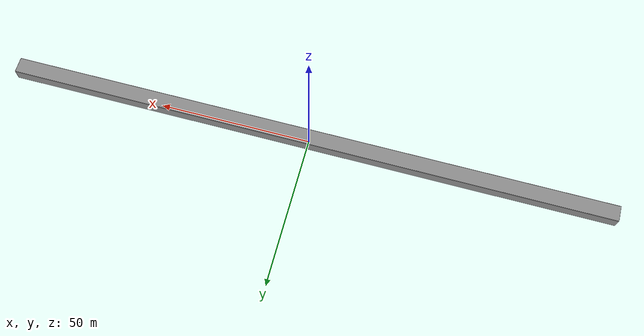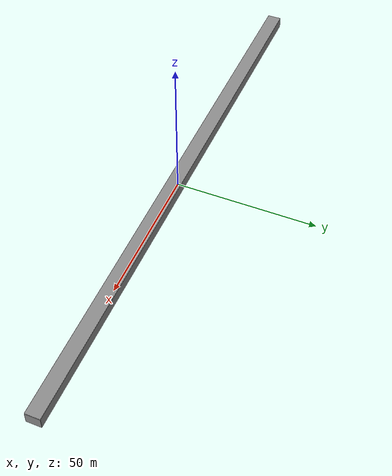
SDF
<?xml version="1.0" ?>
<sdf version="1.7">
  <world name="fastlio_long_corridor_degenerate">
    <gravity>0 0 -9.81</gravity>
    <magnetic_field>6e-06 2.3e-05 -4.2e-05</magnetic_field>
    <physics type="ode">
      <max_step_size>0.001</max_step_size>
      <real_time_factor>1.0</real_time_factor>
      <real_time_update_rate>1000</real_time_update_rate>
    </physics>
    <scene>
      <ambient>0.45 0.45 0.45 1</ambient>
      <background>0.70 0.70 0.70 1</background>
      <shadows>false</shadows>
    </scene>
    <light name="sun" type="directional">
      <cast_shadows>false</cast_shadows>
      <pose>0 0 20 0 0 0</pose>
      <diffuse>0.8 0.8 0.8 1</diffuse>
      <specular>0.1 0.1 0.1 1</specular>
      <direction>-0.3 0.1 -0.95</direction>
    </light>

    <!-- One static model keeps all collision geometry self-contained. -->
    <model name="degenerate_corridor">
      <static>true</static>
      <!-- 200 m long; the endpoints must remain outside the MID360 range. -->
      <link name="structure">
        <collision name="floor_collision">
          <pose>0 0 -0.10 0 0 0</pose>
          <geometry><box><size>200 5.0 0.20</size></box></geometry>
        </collision>
        <visual name="floor_visual">
          <pose>0 0 -0.10 0 0 0</pose>
          <geometry><box><size>200 5.0 0.20</size></box></geometry>
          <material><ambient>0.42 0.42 0.42 1</ambient><diffuse>0.42 0.42 0.42 1</diffuse></material>
        </visual>

        <!-- Parallel side walls: they constrain Y/Z strongly but give little X structure. -->
        <collision name="left_wall_collision">
          <pose>0 2.50 2.00 0 0 0</pose>
          <geometry><box><size>200 0.20 4.0</size></box></geometry>
        </collision>
        <visual name="left_wall_visual">
          <pose>0 2.50 2.00 0 0 0</pose>
          <geometry><box><size>200 0.20 4.0</size></box></geometry>
          <material><ambient>0.62 0.62 0.62 1</ambient><diffuse>0.62 0.62 0.62 1</diffuse></material>
        </visual>
        <collision name="right_wall_collision">
          <pose>0 -2.50 2.00 0 0 0</pose>
          <geometry><box><size>200 0.20 4.0</size></box></geometry>
        </collision>
        <visual name="right_wall_visual">
          <pose>0 -2.50 2.00 0 0 0</pose>
          <geometry><box><size>200 0.20 4.0</size></box></geometry>
          <material><ambient>0.62 0.62 0.62 1</ambient><diffuse>0.62 0.62 0.62 1</diffuse></material>
        </visual>

        <collision name="ceiling_collision">
          <pose>0 0 4.05 0 0 0</pose>
          <geometry><box><size>200 5.0 0.10</size></box></geometry>
        </collision>
        <visual name="ceiling_visual">
          <pose>0 0 4.05 0 0 0</pose>
          <geometry><box><size>200 5.0 0.10</size></box></geometry>
          <material><ambient>0.52 0.52 0.52 1</ambient><diffuse>0.52 0.52 0.52 1</diffuse></material>
        </visual>

        <!-- Safety end caps are 100 m away from the origin, not test features. -->
        <collision name="west_end_collision"><pose>-100 0 2 0 0 0</pose><geometry><box><size>0.20 5.0 4.0</size></box></geometry></collision>
        <visual name="west_end_visual"><pose>-100 0 2 0 0 0</pose><geometry><box><size>0.20 5.0 4.0</size></box></geometry></visual>
        <collision name="east_end_collision"><pose>100 0 2 0 0 0</pose><geometry><box><size>0.20 5.0 4.0</size></box></geometry></collision>
        <visual name="east_end_visual"><pose>100 0 2 0 0 0</pose><geometry><box><size>0.20 5.0 4.0</size></box></geometry></visual>
      </link>
    </model>
  </world>
</sdf>
